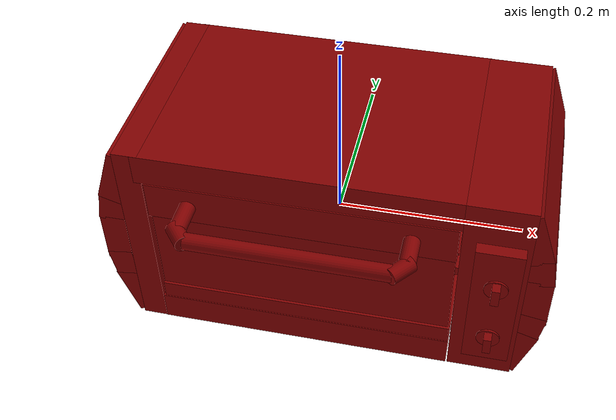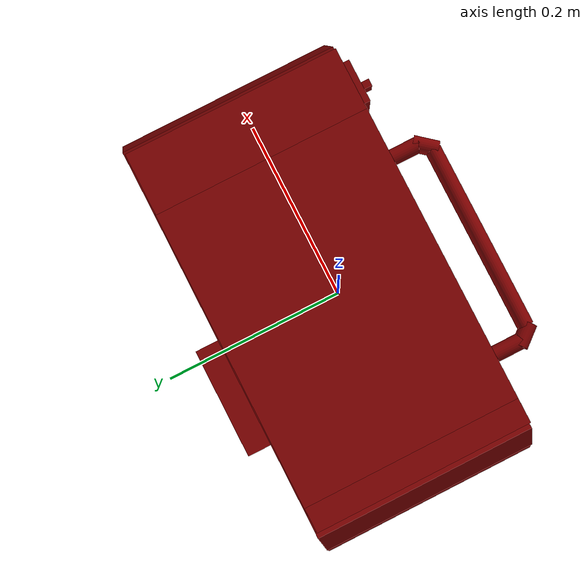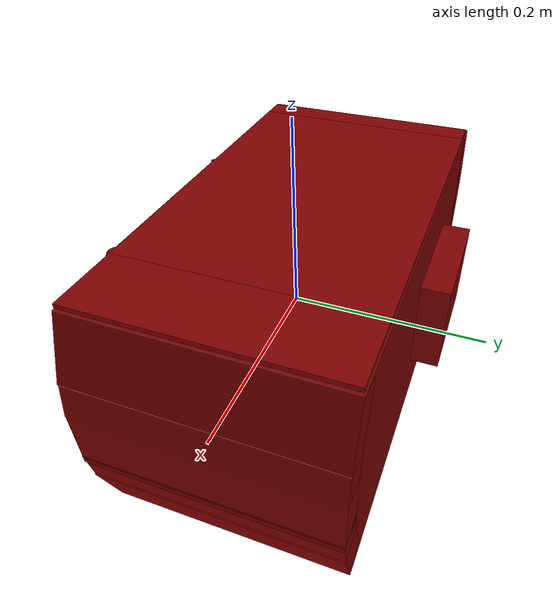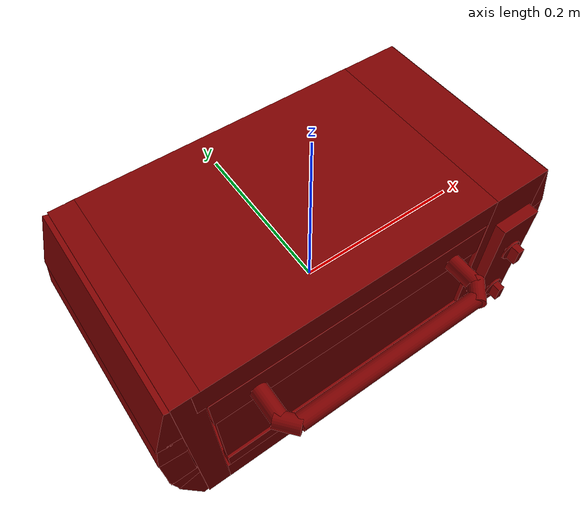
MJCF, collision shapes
<?xml version='1.0' encoding='UTF-8'?>
<mujoco model="model">
  <option timestep="0.002" gravity="0.0 0.0 -9.81"/>
  <compiler angle="radian"/>
  <asset>
    <mesh file="visuals/Body001.obj" name="Body001_vis"/>
    <mesh file="visuals/Door001.obj" name="Door001_vis"/>
    <mesh file="visuals/Door001_Clear.obj" name="Door001_Clear_vis"/>
    <mesh file="visuals/Knob001.obj" name="Knob001_vis"/>
    <mesh file="visuals/Knob002.obj" name="Knob002_vis"/>
    <mesh file="visuals/Shelf001.obj" name="Shelf001_vis"/>
    <texture file="visuals/T_BC001.png" name="Body001_material" type="2d"/>
    <material name="Body001_material" rgba="1 1 1 1.0" texture="Body001_material" shininess="3" specular="3"/>
    <texture file="visuals/T_BC001.png" name="Door001_material" type="2d"/>
    <material name="Door001_material" rgba="1 1 1 1.0" texture="Door001_material" shininess="0.4472135901451111" specular="0.3103448502657381"/>
    <material name="Door001_Clear_material" rgba="0.015459451824426651 0.015459451824426651 0.015459451824426651 0.800000011920929" shininess="0.4472135901451111" specular="0.3103448502657381"/>
    <texture file="visuals/T_BC001.png" name="Knob001_material" type="2d"/>
    <material name="Knob001_material" rgba="1 1 1 1.0" texture="Knob001_material" shininess="1" specular="1"/>
    <texture file="visuals/T_BC001.png" name="Knob002_material" type="2d"/>
    <material name="Knob002_material" rgba="1 1 1 1.0" texture="Knob002_material" shininess="1" specular="1"/>
    <texture file="visuals/T_BC001.png" name="Shelf001_material" type="2d"/>
    <material name="Shelf001_material" rgba="1 1 1 1.0" texture="Shelf001_material" shininess="15" specular="15"/>
  </asset>
  <default>
    <default class="visual">
      <geom conaffinity="0" contype="0" group="1" type="mesh"/>
    </default>
    <default class="collision">
      <geom group="0" rgba="0.5 0 0 0.5"/>
    </default>
    <default class="spawn">
      <geom group="0" rgba="1 1 1 0.5" contype="0" conaffinity="0"/>
      <site group="0" rgba="1 1 1 0.5"/>
    </default>
    <default class="region">
      <geom group="1" conaffinity="0" contype="0" rgba="0 1 0 0"/>
    </default>
  </default>
  <worldbody>
    <body>
      <body name="object">
        <geom mesh="Body001_vis" type="mesh" solimp="0.998 0.998 0.001" solref="0.001 1" friction="0.95 0.3 0.1" class="visual" material="Body001_material"/>
        <geom class="collision" type="box" pos="-0.193138 0.012640 0.006830" size="0.0132620669901371 0.11639637500047684 0.11938273906707764" quat="1.0 0.0 0.0 0.0" density="1000.0"/>
        <geom class="collision" type="box" pos="-0.022815 0.012757 0.109121" size="0.16505663096904755 0.11654280871152878 0.017090940847992897" quat="1.0 0.0 0.0 0.0" density="1000.0"/>
        <geom class="collision" type="box" pos="0.174408 0.012592 0.006833" size="0.03387425094842911 0.1164436861872673 0.11937980353832245" quat="1.0 0.0 0.0 0.0" density="1000.0"/>
        <geom class="collision" type="box" pos="-0.020277 0.024024 -0.095971" size="0.15913398563861847 0.10649477690458298 0.017092833295464516" quat="1.0 0.0 0.0 0.0" density="1000.0"/>
        <geom class="collision" type="box" pos="-0.020277 -0.093292 -0.095997" size="0.15913265943527222 0.010435215197503567 0.017118284478783607" quat="1.0 0.0 0.0 0.0" density="1000.0"/>
        <geom class="collision" type="box" pos="0.001237 0.119093 0.004091" size="0.20646774768829346 0.01142850611358881 0.11686260998249054" quat="1.0 0.0 0.0 0.0" density="1000.0"/>
        <geom class="collision" type="box" pos="-0.051124 0.141815 0.007957" size="0.059916902333498 0.017545338720083237 0.04792989045381546" quat="1.0 0.0 0.0 0.0" density="1000.0"/>
        <geom class="collision" type="cylinder" pos="-0.170201 -0.071961 -0.119808" size="0.008731570094823837 0.005915897432714701" quat="1.0 0.0 0.0 0.0" density="1000.0"/>
        <geom class="collision" type="cylinder" pos="-0.170201 0.098773 -0.119808" size="0.008604285307228565 0.005829658359289169" quat="1.0 0.0 0.0 0.0" density="1000.0"/>
        <geom class="collision" type="cylinder" pos="0.170201 0.098773 -0.119808" size="0.008771192282438278 0.0059427423402667046" quat="1.0 0.0 0.0 0.0" density="1000.0"/>
        <geom class="collision" type="cylinder" pos="0.170201 -0.071961 -0.119808" size="0.00872209295630455 0.005909476429224014" quat="1.0 0.0 0.0 0.0" density="1000.0"/>
        <geom class="collision" type="box" pos="0.178562 -0.106278 0.000873" size="0.023988675326108932 0.010166867636144161 0.07881242781877518" quat="1.0 0.0 0.0 0.0" density="1000.0"/>
        <geom class="collision" type="box" pos="-0.177264 0.004596 0.005920" size="0.0026083234697580338 0.08229801803827286 0.005194200202822685" quat="1.0 0.0 0.0 0.0" density="1000.0"/>
        <geom class="collision" type="box" pos="0.137726 0.004596 0.005920" size="0.0026083234697580338 0.08229801803827286 0.005194200202822685" quat="1.0 0.0 0.0 0.0" density="1000.0"/>
        <geom class="collision" type="box" pos="0.208272 0.014049 0.089473" size="0.031018467620015144 0.1166231706738472 0.013800287619233131" quat="0.8102489709854126 -5.2191286909657533e-14 0.586085855960846 7.87458489526216e-08" density="1000.0"/>
        <geom class="collision" type="box" pos="0.221261 0.014049 0.002977" size="0.031018467620015144 0.1166231706738472 0.01380028948187828" quat="0.7071069478988647 5.675745740063576e-08 0.7071065902709961 -5.675742542621265e-08" density="1000.0"/>
        <geom class="collision" type="box" pos="0.219125 0.014049 0.046652" size="0.01675400510430336 0.1166231706738472 0.013800288550555706" quat="0.7636898159980774 6.923354334276155e-08 0.6455833911895752 -5.975347505682294e-08" density="1000.0"/>
        <geom class="collision" type="box" pos="0.208272 0.014049 -0.077404" size="0.031018467620015144 0.1166231706738472 0.013800287619233131" quat="9.720939431190345e-08 -0.8102489709854126 9.692686120388316e-08 -0.586085855960846" density="1000.0"/>
        <geom class="collision" type="box" pos="0.219125 0.014049 -0.034583" size="0.01675400510430336 0.1166231706738472 0.013800288550555706" quat="1.367000237451066e-07 -0.7636898159980774 -1.930571968955519e-08 -0.6455833911895752" density="1000.0"/>
        <geom class="collision" type="box" pos="-0.208201 0.014049 0.089473" size="0.031018467620015144 0.1166231706738472 0.013800288550555706" quat="7.134494239835476e-08 0.5860857367515564 -5.3533986132947575e-09 -0.8102490305900574" density="1000.0"/>
        <geom class="collision" type="box" pos="-0.221190 0.014049 0.002977" size="0.031018467620015144 0.1166231706738472 0.01380028948187828" quat="1.3767881057447084e-07 -0.7071069478988647 1.3767873952019727e-07 0.7071065902709961" density="1000.0"/>
        <geom class="collision" type="box" pos="-0.219054 0.014049 0.046652" size="0.01675400324165821 0.1166231706738472 0.013800288550555706" quat="1.1311079362030796e-07 -0.6455833315849304 1.1433902358248815e-07 0.7636898159980774" density="1000.0"/>
        <geom class="collision" type="box" pos="-0.208201 0.014049 -0.077404" size="0.031018467620015144 0.1166231706738472 0.013800288550555706" quat="0.5860857367515564 -1.9367996628716355e-07 -0.8102490305900574 2.7224009713222586e-08" density="1000.0"/>
        <geom class="collision" type="box" pos="-0.219054 0.014049 -0.034583" size="0.01675400324165821 0.1166231706738472 0.013800288550555706" quat="0.6455833315849304 -6.523431750338204e-08 -0.7636898159980774 6.523431750338204e-08" density="1000.0"/>
        <body name="Door001">
          <joint axis="1.0 0.0 0.0" pos="-0.019954 -0.103243 -0.078491" limited="true" name="Door001_joint" range="0.0 1.5707963267948966" type="hinge" damping="1" frictionloss="1" armature=".01" stiffness="0.5" springref="-0.5"/>
          <geom mesh="Door001_vis" type="mesh" solimp="0.998 0.998 0.001" solref="0.001 1" friction="0.95 0.3 0.1" class="visual" material="Door001_material"/>
          <geom class="collision" type="cylinder" pos="-0.019791 -0.151338 0.071134" size="0.008694443851709366 0.10181060433387756" quat="0.7071068286895752 -0.0 0.7071067690849304 0.0" density="1000.0"/>
          <geom class="collision" type="cylinder" pos="-0.132912 -0.124278 0.071462" size="0.008688891306519508 0.016764547675848007" quat="0.5 -0.5 0.4999999701976776 0.5" density="1000.0"/>
          <geom class="collision" type="cylinder" pos="0.093239 -0.124278 0.071462" size="0.008688891306519508 0.016764547675848007" quat="0.5 -0.5 -0.4999999701976776 -0.5" density="1000.0"/>
          <geom class="collision" type="box" pos="-0.019021 -0.098737 -0.066751" size="0.15731030702590942 0.0052765896543860435 0.01013887021690607" quat="1.0 0.0 0.0 0.0" density="1000.0"/>
          <geom class="collision" type="box" pos="-0.020254 -0.098737 0.069170" size="0.15800733864307404 0.0052765896543860435 0.021453475579619408" quat="1.0 0.0 0.0 0.0" density="1000.0"/>
          <geom class="collision" type="cylinder" pos="0.088159 -0.145867 0.071462" size="0.008688891306519508 0.013618139550089836" quat="0.29883623123168945 -0.6408563852310181 -0.29883623123168945 -0.6408563852310181" density="1000.0"/>
          <geom class="collision" type="cylinder" pos="-0.128924 -0.145984 0.071462" size="0.008688891306519508 0.012680571526288986" quat="0.29883629083633423 -0.6408565044403076 0.2988361716270447 0.6408562660217285" density="1000.0"/>
          <body name="Door001_Clear">
            <geom mesh="Door001_Clear_vis" type="mesh" solimp="0.998 0.998 0.001" solref="0.001 1" friction="0.95 0.3 0.1" class="visual" material="Door001_Clear_material"/>
            <geom class="collision" type="box" pos="-0.019475 -0.098579 -0.005660" size="0.15650580823421478 0.002406321233138442 0.05982249602675438" quat="1.0 0.0 0.0 0.0" density="1000.0"/>
          </body>
        </body>
        <body name="Knob001">
          <joint axis="0.0 -1.0 0.0" pos="0.179275 -0.121330 0.032832" limited="true" name="Knob001_joint" range="0.0 5.497787143782138" type="hinge" damping="0.05" armature="0.001"/>
          <geom mesh="Knob001_vis" type="mesh" solimp="0.998 0.998 0.001" solref="0.001 1" friction="0.95 0.3 0.1" class="visual" material="Knob001_material"/>
          <geom class="collision" type="cylinder" pos="0.179183 -0.118405 0.032925" size="0.012027342803776264 0.001170672127045691" quat="0.7071067094802856 0.7071068286895752 0.0 0.0" density="1000.0"/>
          <geom class="collision" type="box" pos="0.179213 -0.124816 0.033071" size="0.004090623464435339 0.0053969454020261765 0.010216381400823593" quat="1.0 0.0 0.0 0.0" density="1000.0"/>
        </body>
        <body name="Knob002">
          <joint axis="0.0 -1.0 0.0" pos="0.179137 -0.121330 -0.041271" limited="true" name="Knob002_joint" range="0.0 5.497787143782138" type="hinge" damping="0.05" armature="0.001"/>
          <geom mesh="Knob002_vis" type="mesh" solimp="0.998 0.998 0.001" solref="0.001 1" friction="0.95 0.3 0.1" class="visual" material="Knob002_material"/>
          <geom class="collision" type="cylinder" pos="0.179048 -0.118515 -0.041735" size="0.012027342803776264 0.001214546849951148" quat="0.7071067094802856 0.7071068286895752 0.0 0.0" density="1000.0"/>
          <geom class="collision" type="box" pos="0.179078 -0.124927 -0.042092" size="0.010198763571679592 0.005184647161513567 0.004046327900141478" quat="0.6990519762039185 -1.8655081035490184e-08 -0.7150708436965942 -6.2446318338516e-08" density="1000.0"/>
        </body>
        <body name="Shelf001">
          <joint axis="0.0 -1.0 0.0" pos="-0.019522 0.011220 0.014160" limited="true" name="Shelf001_joint" range="0.0 0.13" type="slide" damping="1" frictionloss="1" armature=".01" stiffness="0.05"/>
          <geom mesh="Shelf001_vis" type="mesh" solimp="0.998 0.998 0.001" solref="0.001 1" friction="0.95 0.3 0.1" class="visual" material="Shelf001_material"/>
          <geom class="collision" type="box" pos="-0.019522 0.010680 0.014456" size="0.1578701287508011 0.07277391850948334 0.0012083237525075674" quat="1.0 0.0 0.0 0.0" density="1000.0"/>
        </body>
        <geom class="region" name="reg_int" type="box" pos="-0.019623 0.0050050000000000025 0.006355999999999994" size="0.160356 0.103134 0.08483399999999999"/>
        <geom class="region" name="reg_main" type="box" pos="0.0 0.0214465 0.0" size="0.236498 0.1379135 0.126212"/>
      </body>
    </body>
  </worldbody>
  <actuator>
    <motor name="Door001_joint_actuator" joint="Door001_joint" gear="30"/>
    <motor name="Knob001_joint_actuator" joint="Knob001_joint" gear="10"/>
    <motor name="Knob002_joint_actuator" joint="Knob002_joint" gear="10"/>
    <motor name="Shelf001_joint_actuator" joint="Shelf001_joint" gear="10"/>
  </actuator>
</mujoco>
